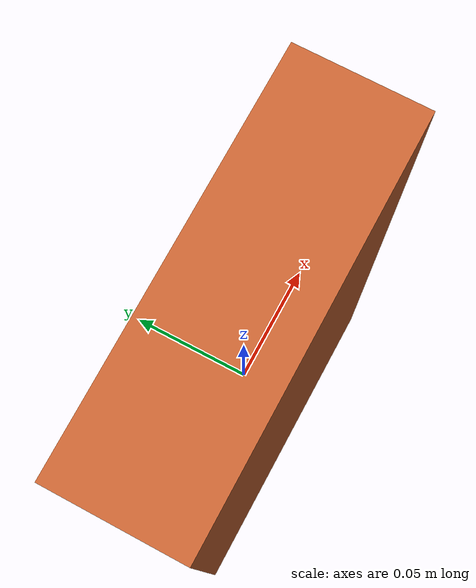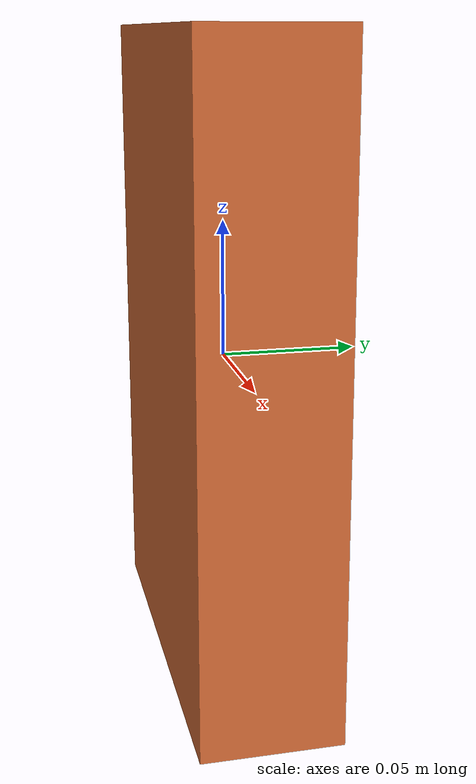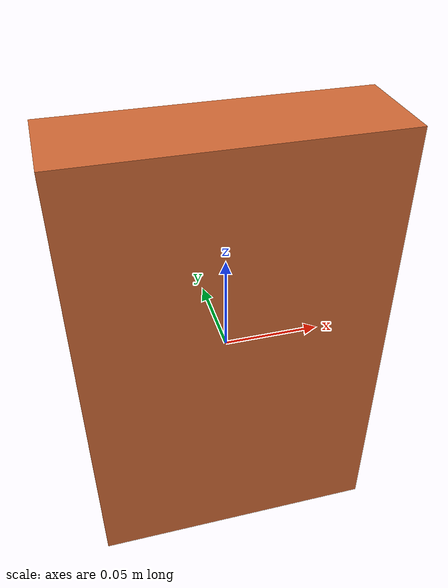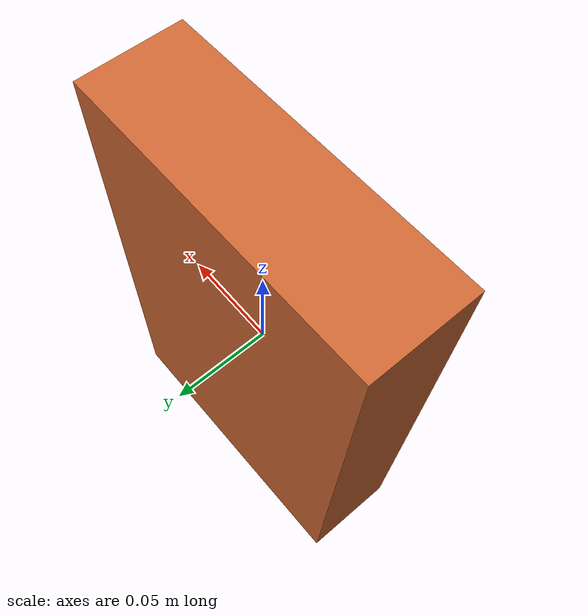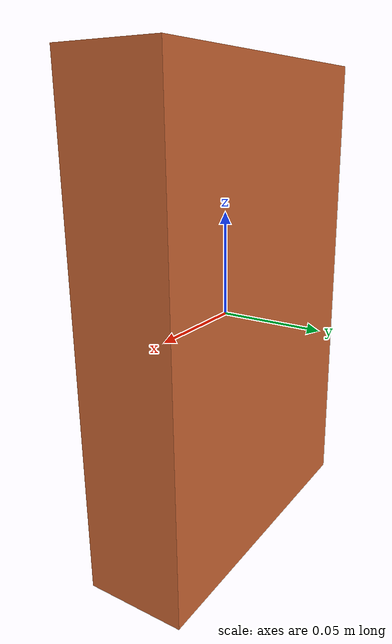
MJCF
<mujoco model="book_thick">
  <compiler angle="radian"/>
  <!-- Full dimensions (m): 0.156 0.05 0.236; local X depth, Y thickness, Z height.
       Uniform-box inertia is explicit; geoms do not add mass. -->
  <worldbody>
    <body name="book">
      <freejoint name="book/free_joint"/>
      <inertial pos="0 0 0" quat="1 0 0 0" mass="0.65" diaginertia="0.00315228333333333 0.00433506666666667 0.00145361666666667"/>
      <geom name="book/collision" type="box" size="0.078 0.025 0.118" mass="0"
            friction="0.9 0.005 0.0001" group="3" rgba="0 0 0 0"/>
      <geom name="book/visual" type="box" size="0.078 0.025 0.118" mass="0"
            contype="0" conaffinity="0" group="1" rgba="0.8 0.4 0.2 1"/>
      <site name="book/center" size="0.005 0 0" group="5"/>
      <site name="book/grasp_target" pos="-0.066 0 0"
            quat="0.5 0.5 0.5 0.5" size="0.005 0 0" rgba="1 0.5 0 1" group="1"/>
    </body>
  </worldbody>
</mujoco>
